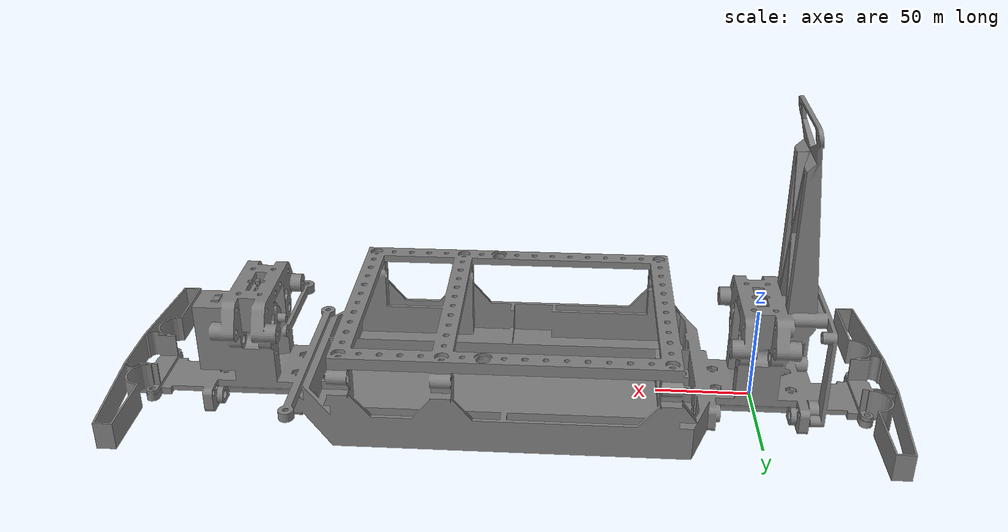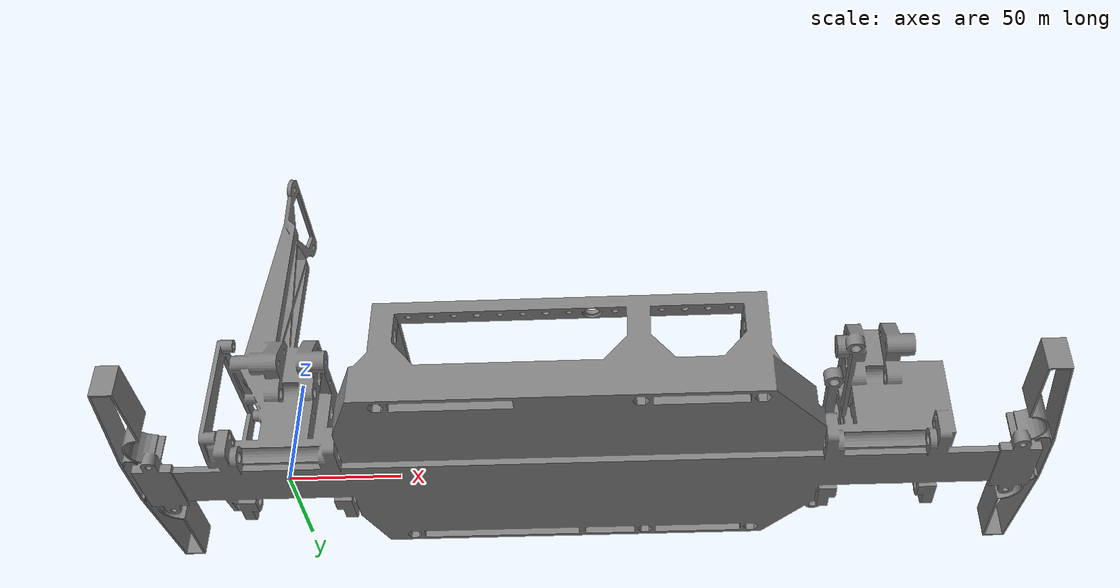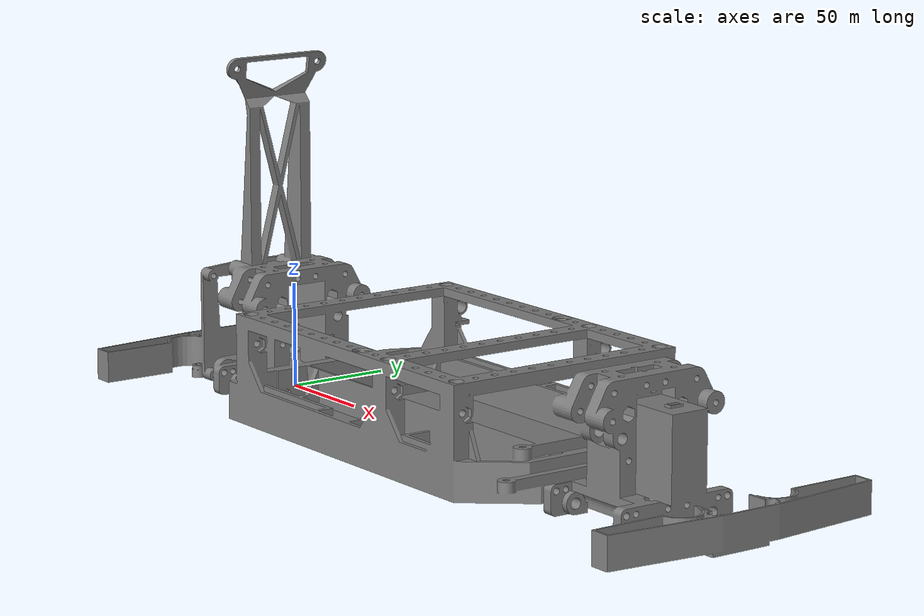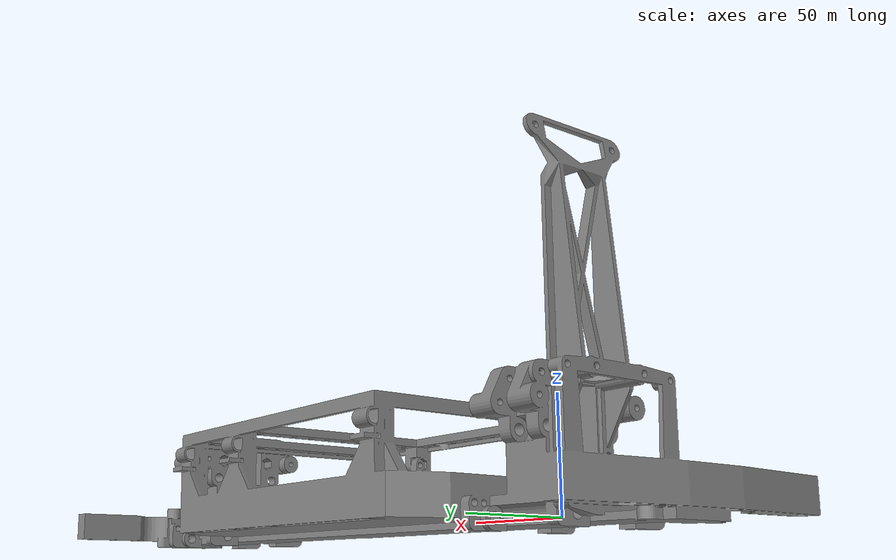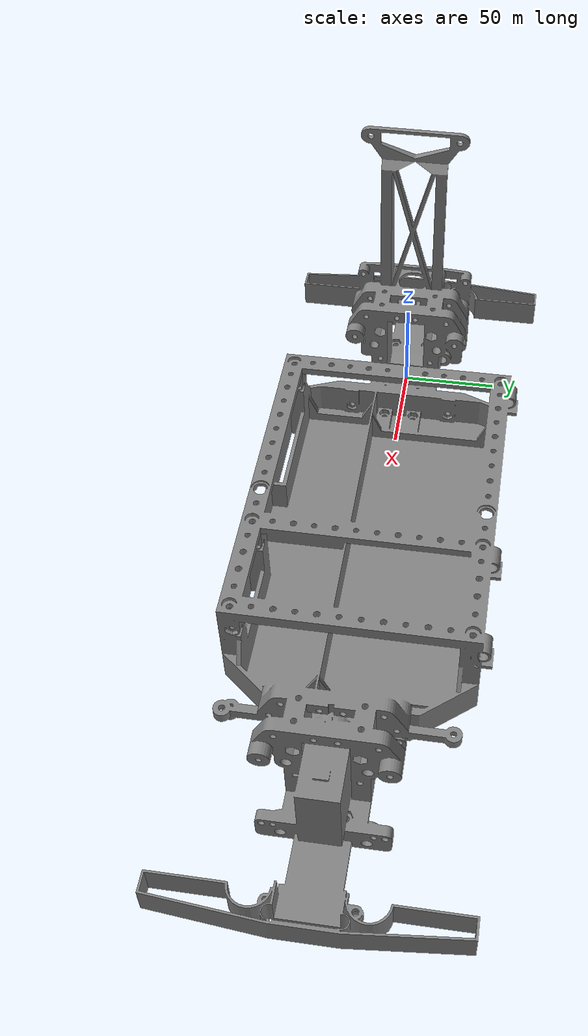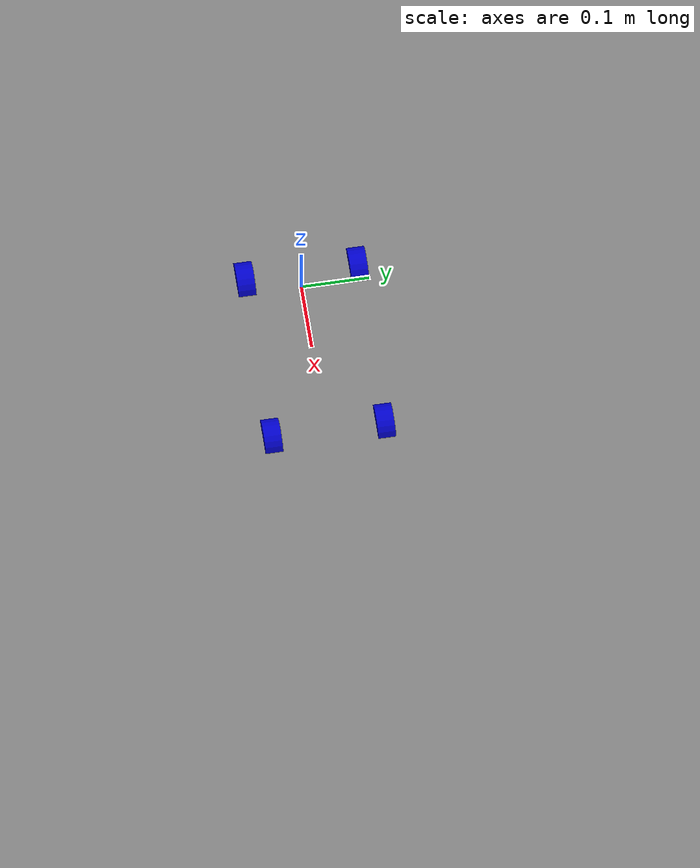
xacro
<?xml version="1.0"?>
<robot xmlns:xacro="http://ros.org/wiki/xacro" name="car">

  <!-- Import materials and plugins -->
  <xacro:include filename="$(find car2_gazebo)/models/materials.xacro"/>
  <xacro:include filename="$(find car2_gazebo)/models/platforms/car/plugins.xacro"/>

  <!-- Import platform body -->
  <xacro:include filename="$(find car2_gazebo)/models/platforms/car/body/body.xacro"/>

  <!-- Base Footprint -->
  <link name="r0/base_footprint"/>

  <!-- Base Link -->
  <link name="r0/base_link"/>

  <!-- Joint between base_footprint and base_link -->
  <joint name="r0/base_footprint_joint" type="fixed">
    <origin xyz="0 0 0" rpy="0 0 0"/>
    <parent link="r0/base_footprint"/>
    <child link="r0/base_link"/>
  </joint>

  <!-- Define the car body -->
  <xacro:car_body name="chassis" namespace="r0" parent="base_link"/>

</robot>

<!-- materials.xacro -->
<robot>

  <material name="black">
    <color rgba="0.0 0.0 0.0 1.0"/>
  </material>

  <material name="blue">
    <color rgba="0.0 0.0 0.8 1.0"/>
  </material>

  <material name="light_blue">
    <color rgba="${100/255} ${134/255} ${213/255} 1.0"/>
  </material>

  <material name="green">
    <color rgba="0.0 0.8 0.0 1.0"/>
  </material>

  <material name="light_grey">
    <color rgba="0.5 0.5 0.5 1.0"/>
  </material>

  <material name="grey">
    <color rgba="0.2 0.2 0.2 1.0"/>
  </material>

  <material name="orange">
    <color rgba="${255/255} ${108/255} ${10/255} 1.0"/>
  </material>

  <material name="brown">
    <color rgba="${222/255} ${207/255} ${195/255} 1.0"/>
  </material>

  <material name="red">
    <color rgba="0.8 0.0 0.0 1.0"/>
  </material>

  <material name="white">
    <color rgba="1.0 1.0 1.0 1.0"/>
  </material>

</robot>

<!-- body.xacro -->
<robot xmlns:xacro="http://ros.org/wiki/xacro">

  <!-- Include inertia tensors -->
  <xacro:include filename="$(find car2_gazebo)/models/inertia_tensors.xacro"/>

  <!-- Include chassis and wheel macros -->
  <xacro:include filename="$(find car2_gazebo)/models/platforms/car/body/chassis.xacro"/>
  <xacro:include filename="$(find car2_gazebo)/models/platforms/car/body/wheel.xacro"/>
  <xacro:include filename="$(find car2_gazebo)/models/platforms/car/sensors/camera.xacro"/>

  <xacro:property name="wheel_radius" value="0.03225" />

  <xacro:macro name="car_body" params="name namespace parent">
    <!-- Chassis -->
    <xacro:car_chassis name="${name}" namespace="${namespace}" parent="${parent}" xyz="0.13 0 0.068" rpy="0 0 ${pi}"/>

    <!-- Wheels -->
    <xacro:wheel namespace="${namespace}" side="rear_left"   parent="${parent}"   xyz="0    -0.055 ${wheel_radius}" rpy="${pi/2} 0 0" radius="${wheel_radius}"  steering="fixed"/>
    <xacro:wheel namespace="${namespace}" side="rear_right"  parent="${parent}"   xyz="0    +0.055 ${wheel_radius}" rpy="${-pi/2} 0 0" radius="${wheel_radius}"  steering="fixed"/>
    <xacro:wheel namespace="${namespace}" side="front_left"  parent="${parent}"   xyz="0.26 -0.055 ${wheel_radius}" rpy="${pi/2} 0 0" radius="${wheel_radius}"  steering="revolute"/>
    <xacro:wheel namespace="${namespace}" side="front_right" parent="${parent}"   xyz="0.26 +0.055 ${wheel_radius}" rpy="${-pi/2} 0 0" radius="${wheel_radius}"  steering="revolute"/>

    <!-- Plugins -->
    <xacro:wheels_steering namespace="${namespace}" radius="${wheel_radius}"/>
    <xacro:car_state_publisher namespace="${namespace}"/>

  </xacro:macro>
</robot>

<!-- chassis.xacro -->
<robot xmlns:xacro="http://ros.org/wiki/xacro">

  <xacro:macro name="car_chassis" params="name namespace parent xyz rpy">

    <xacro:property name="plate_x"    value="0.26" />
    <xacro:property name="plate_y"    value="0.08" />
    <xacro:property name="plate_z"    value="0.02" />

    <!-- Chassis -->
    <joint name="${parent}_${name}_joint" type="fixed">
        <origin xyz="${xyz}" rpy="${rpy}"/>
        <parent link="${namespace}/${parent}"/>
        <child link="${namespace}/${name}"/>
    </joint>
    <link name="${namespace}/${name}">
        <visual>
            <origin xyz="${plate_x/2} 0 -${plate_z}" rpy="0 0 0"/>
            <geometry>
                <mesh scale="1 1 1" filename="file://$(find car2_gazebo)/models/platforms/car/body/meshes/car.dae/car.dae"/>
            </geometry>
            <material name="light_grey"/>
        </visual>
        <collision>
            <origin xyz="0 0 -${plate_z}" rpy="0 0 0"/>
            <geometry>
                <box size="${plate_x} ${plate_y} ${plate_z}"/>
            </geometry>
        </collision>
        <xacro:box_inertial_with_origin x="${plate_x}" y="${plate_y}"  z="${plate_z}" mass="1.074">
            <origin xyz="0 0 -${plate_z}" />
        </xacro:box_inertial_with_origin>
    </link>
  </xacro:macro>

</robot>

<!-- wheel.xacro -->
<robot xmlns:xacro="http://ros.org/wiki/xacro">

  <!-- Include inertia tensors to use M_PI and inertia macros -->
  <xacro:include filename="$(find car2_gazebo)/models/inertia_tensors.xacro"/>

  <xacro:macro name="wheel" params="side namespace parent xyz rpy radius steering">

    <xacro:property name="mount_size" value="0.01" />
    <xacro:property name="steering_length" value="0.03" />
    <xacro:property name="steering_radius" value="0.005" />
    <xacro:property name="axis_length" value="0.01" />
    <xacro:property name="axis_radius" value="0.01" />
    <xacro:property name="wheel_length" value="0.026" />
    <xacro:property name="wheel_radius" value="${radius}" />
    <xacro:property name="cap_size" value="0.01" />
    <xacro:property name="cap_length" value="0.005" />

    <!-- Mount -->
    <joint name="wheel_mount_${side}_joint" type="${steering}">
        <origin xyz="${xyz}" rpy="${rpy}"/>
        <parent link="${namespace}/${parent}"/>
        <child link="${namespace}/wheel_mount_${side}"/>
        <axis xyz="0 1 0"/>
        <limit effort="50" velocity="50" lower="${-M_PI}" upper="${M_PI}" />
    </joint>
    <link name="${namespace}/wheel_mount_${side}">
        <visual>
            <origin xyz="0 0 ${mount_size/2}" rpy="0 0 0"/>
            <geometry>
                <box size="${mount_size} ${mount_size} ${mount_size}"/>
            </geometry>
            <material name="blue"/>
        </visual>
    </link>

    <!-- Steering -->
    <joint name="wheel_steering_${side}_joint" type="fixed">
        <origin xyz="0 0 0" rpy="0 0 0"/>
        <parent link="${namespace}/wheel_mount_${side}"/>
        <child link="${namespace}/wheel_steering_${side}"/>
    </joint>
    <link name="${namespace}/wheel_steering_${side}">
        <inertial>
            <mass value="0.001"/>
            <origin xyz="0 0 0"/>
            <inertia ixx="0.012411765597" ixy="0" ixz="0" iyy="0.015218160428" iyz="0" izz="0.011763977943"/>
        </inertial>
        <visual>
            <origin xyz="0 0 0" rpy="${M_PI/2} 0 0"/>
            <geometry>
                <cylinder radius="${steering_radius}" length="${steering_length}"/>
            </geometry>
            <material name="blue"/>
        </visual>
        <collision>
            <origin xyz="0 0 0" rpy="${M_PI/2} 0 0"/>
            <geometry>
                <cylinder radius="${steering_radius}" length="${steering_length}"/>
            </geometry>
        </collision>
        <xacro:cylinder_inertial_with_origin radius="${axis_radius}" length="${steering_length}"  mass="0.001">
            <origin xyz="0 0 ${steering_radius/2}" rpy="0 0 0"/>
        </xacro:cylinder_inertial_with_origin>
    </link>

    <!-- Axis -->
    <joint name="wheel_axis_${side}_joint" type="continuous">
        <origin xyz="0 0 ${steering_radius}" rpy="0 0 0"/>
        <parent link="${namespace}/wheel_steering_${side}"/>
        <child link="${namespace}/wheel_axis_${side}"/>
        <axis xyz="0 0 1"/>
        <dynamics damping="0.000" friction="0.0"/>
    </joint>
    <link name="${namespace}/wheel_axis_${side}">
        <visual>
            <origin xyz="0 0 ${axis_length/2}" rpy="0 0 0"/>
            <geometry>
                <cylinder radius="${axis_radius}" length="${axis_length}"/>
            </geometry>
            <material name="blue"/>
        </visual>
        <collision>
            <origin xyz="0 0 ${axis_length/2}" rpy="0 0 0"/>
            <geometry>
                <cylinder radius="${axis_radius}" length="${axis_length}"/>
            </geometry>
        </collision>
        <xacro:cylinder_inertial_with_origin radius="${axis_radius}" length="${axis_length}"  mass="0.0875">
            <origin xyz="0 0 ${axis_length/2}" rpy="0 0 0"/>
        </xacro:cylinder_inertial_with_origin>
    </link>

    <!-- Wheel -->
    <joint name="wheel_${side}_joint" type="fixed">
        <origin xyz="0 0 ${axis_length}" rpy="0 0 0"/>
        <parent link="${namespace}/wheel_axis_${side}"/>
        <child link="${namespace}/wheel_${side}"/>
    </joint>
    <link name="${namespace}/wheel_${side}">
        <visual>
            <origin xyz="0 0 ${wheel_length/2}" rpy="0 0 0"/>
            <geometry>
                <cylinder radius="${wheel_radius}" length="${wheel_length}"/>
            </geometry>
            <material name="blue"/>
        </visual>
        <collision>
            <origin xyz="0 0 ${wheel_length/2}" rpy="0 0 0"/>
            <geometry>
                <cylinder radius="${wheel_radius}" length="${wheel_length}"/>
            </geometry>
        </collision>
        <xacro:cylinder_inertial_with_origin radius="${wheel_radius}" length="${wheel_length}"  mass="0.026">
            <origin xyz="0 0 ${wheel_length/2}" rpy="0 0 0"/>
        </xacro:cylinder_inertial_with_origin>
    </link>
    <gazebo reference="${namespace}/wheel_${side}">
        <material>Gazebo/Grey</material>
        <mu>50.0</mu>
        <mu2>50.0</mu2>
    </gazebo>

    <!-- Wheel Cap -->
    <joint name="wheel_cap_${side}_joint" type="fixed">
        <origin xyz="0 0 ${wheel_length}" rpy="0 0 0"/>
        <parent link="${namespace}/wheel_${side}"/>
        <child link="${namespace}/wheel_cap_${side}"/>
    </joint>
    <link name="${namespace}/wheel_cap_${side}">
        <visual>
            <origin xyz="0 0 ${cap_length/2}" rpy="0 0 0"/>
            <geometry>
                <box size="${cap_size} ${cap_size} ${cap_length}"/>
            </geometry>
            <material name="blue"/>
        </visual>
    </link>
  </xacro:macro>

</robot>
